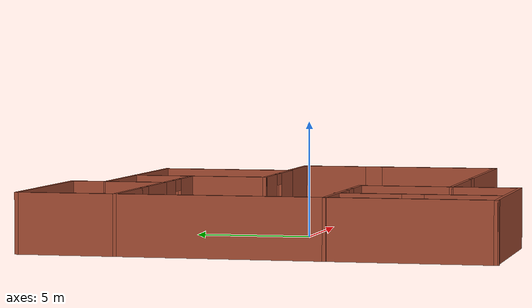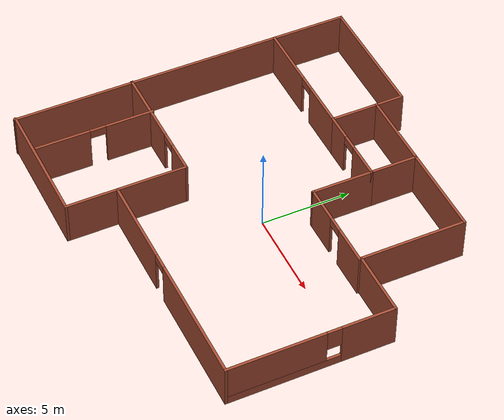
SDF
<?xml version='1.0'?>
<sdf version='1.7'>
  <model name='room'>
    <pose>-0.19163 0.060404 0 0 -0 0</pose>
    <link name='Wall_11'>
      <collision name='Wall_11_Collision'>
        <geometry>
          <box>
            <size>7.25 0.15 2.5</size>
          </box>
        </geometry>
        <pose>0 0 1.25 0 -0 0</pose>
      </collision>
      <visual name='Wall_11_Visual'>
        <pose>0 0 1.25 0 -0 0</pose>
        <geometry>
          <box>
            <size>7.25 0.15 2.5</size>
          </box>
        </geometry>
        <material>
          <script>
            <uri>file://media/materials/scripts/gazebo.material</uri>
            <name>Gazebo/Bricks</name>
          </script>
          <ambient>1 1 1 1</ambient>
        </material>
        <meta>
          <layer>0</layer>
        </meta>
      </visual>
      <pose>-6.5 9.675 0 0 -0 0</pose>
    </link>
    <link name='Wall_12'>
      <collision name='Wall_12_Collision'>
        <geometry>
          <box>
            <size>4.25 0.15 2.5</size>
          </box>
        </geometry>
        <pose>0 0 1.25 0 -0 0</pose>
      </collision>
      <visual name='Wall_12_Visual'>
        <pose>0 0 1.25 0 -0 0</pose>
        <geometry>
          <box>
            <size>4.25 0.15 2.5</size>
          </box>
        </geometry>
        <material>
          <script>
            <uri>file://media/materials/scripts/gazebo.material</uri>
            <name>Gazebo/Bricks</name>
          </script>
          <ambient>1 1 1 1</ambient>
        </material>
        <meta>
          <layer>0</layer>
        </meta>
      </visual>
      <pose>-2.95 7.625 0 0 -0 -1.5708</pose>
    </link>
    <link name='Wall_13'>
      <pose>-0.775 5.575 0 0 -0 0</pose>
      <visual name='Wall_13_Visual_0'>
        <pose>-1.47231 0 1.25 0 -0 0</pose>
        <geometry>
          <box>
            <size>1.55538 0.15 2.5</size>
          </box>
        </geometry>
        <material>
          <script>
            <uri>file://media/materials/scripts/gazebo.material</uri>
            <name>Gazebo/Bricks</name>
          </script>
          <ambient>1 1 1 1</ambient>
        </material>
        <meta>
          <layer>0</layer>
        </meta>
      </visual>
      <collision name='Wall_13_Collision_0'>
        <geometry>
          <box>
            <size>1.55538 0.15 2.5</size>
          </box>
        </geometry>
        <pose>-1.47231 0 1.25 0 -0 0</pose>
      </collision>
      <visual name='Wall_13_Visual_1'>
        <pose>1.22769 0 1.25 0 -0 0</pose>
        <geometry>
          <box>
            <size>2.04462 0.15 2.5</size>
          </box>
        </geometry>
        <material>
          <script>
            <uri>file://media/materials/scripts/gazebo.material</uri>
            <name>Gazebo/Bricks</name>
          </script>
          <ambient>1 1 1 1</ambient>
        </material>
        <meta>
          <layer>0</layer>
        </meta>
      </visual>
      <collision name='Wall_13_Collision_1'>
        <geometry>
          <box>
            <size>2.04462 0.15 2.5</size>
          </box>
        </geometry>
        <pose>1.22769 0 1.25 0 -0 0</pose>
      </collision>
      <visual name='Wall_13_Visual_2'>
        <pose>-0.244619 0 2.25 0 -0 0</pose>
        <geometry>
          <box>
            <size>0.9 0.15 0.5</size>
          </box>
        </geometry>
        <material>
          <script>
            <uri>file://media/materials/scripts/gazebo.material</uri>
            <name>Gazebo/Bricks</name>
          </script>
          <ambient>1 1 1 1</ambient>
        </material>
        <meta>
          <layer>0</layer>
        </meta>
      </visual>
      <collision name='Wall_13_Collision_2'>
        <geometry>
          <box>
            <size>0.9 0.15 0.5</size>
          </box>
        </geometry>
        <pose>-0.244619 0 2.25 0 -0 0</pose>
      </collision>
    </link>
    <link name='Wall_14'>
      <collision name='Wall_14_Collision'>
        <geometry>
          <box>
            <size>2.75 0.15 2.5</size>
          </box>
        </geometry>
        <pose>0 0 1.25 0 -0 0</pose>
      </collision>
      <visual name='Wall_14_Visual'>
        <pose>0 0 1.25 0 -0 0</pose>
        <geometry>
          <box>
            <size>2.75 0.15 2.5</size>
          </box>
        </geometry>
        <material>
          <script>
            <uri>file://media/materials/scripts/gazebo.material</uri>
            <name>Gazebo/Bricks</name>
          </script>
          <ambient>1 1 1 1</ambient>
        </material>
        <meta>
          <layer>0</layer>
        </meta>
      </visual>
      <pose>1.4 6.875 0 0 -0 1.5708</pose>
    </link>
    <link name='Wall_15'>
      <collision name='Wall_15_Collision'>
        <geometry>
          <box>
            <size>5.25 0.15 2.5</size>
          </box>
        </geometry>
        <pose>0 0 1.25 0 -0 0</pose>
      </collision>
      <visual name='Wall_15_Visual'>
        <pose>0 0 1.25 0 -0 0</pose>
        <geometry>
          <box>
            <size>5.25 0.15 2.5</size>
          </box>
        </geometry>
        <material>
          <script>
            <uri>file://media/materials/scripts/gazebo.material</uri>
            <name>Gazebo/Bricks</name>
          </script>
          <ambient>1 1 1 1</ambient>
        </material>
        <meta>
          <layer>0</layer>
        </meta>
      </visual>
      <pose>3.95 8.175 0 0 -0 0</pose>
    </link>
    <link name='Wall_16'>
      <collision name='Wall_16_Collision'>
        <geometry>
          <box>
            <size>6 0.15 2.5</size>
          </box>
        </geometry>
        <pose>0 0 1.25 0 -0 0</pose>
      </collision>
      <visual name='Wall_16_Visual'>
        <pose>0 0 1.25 0 -0 0</pose>
        <geometry>
          <box>
            <size>6 0.15 2.5</size>
          </box>
        </geometry>
        <material>
          <script>
            <uri>file://media/materials/scripts/gazebo.material</uri>
            <name>Gazebo/Bricks</name>
          </script>
          <ambient>1 1 1 1</ambient>
        </material>
        <meta>
          <layer>0</layer>
        </meta>
      </visual>
      <pose>6.5 5.25 0 0 -0 -1.5708</pose>
    </link>
    <link name='Wall_17'>
      <collision name='Wall_17_Collision'>
        <geometry>
          <box>
            <size>3.75 0.15 2.5</size>
          </box>
        </geometry>
        <pose>0 0 1.25 0 -0 0</pose>
      </collision>
      <visual name='Wall_17_Visual'>
        <pose>0 0 1.25 0 -0 0</pose>
        <geometry>
          <box>
            <size>3.75 0.15 2.5</size>
          </box>
        </geometry>
        <material>
          <script>
            <uri>file://media/materials/scripts/gazebo.material</uri>
            <name>Gazebo/Bricks</name>
          </script>
          <ambient>1 1 1 1</ambient>
        </material>
        <meta>
          <layer>0</layer>
        </meta>
      </visual>
      <pose>8.3 2.325 0 0 -0 0</pose>
    </link>
    <link name='Wall_18'>
      <pose>10.1 -2.225 0 0 -0 -1.5708</pose>
      <visual name='Wall_18_Visual_0'>
        <pose>-3.12565 0 1.25 0 -0 0</pose>
        <geometry>
          <box>
            <size>2.99871 0.15 2.5</size>
          </box>
        </geometry>
        <material>
          <script>
            <uri>file://media/materials/scripts/gazebo.material</uri>
            <name>Gazebo/Bricks</name>
          </script>
          <ambient>1 1 1 1</ambient>
        </material>
        <meta>
          <layer>0</layer>
        </meta>
      </visual>
      <collision name='Wall_18_Collision_0'>
        <geometry>
          <box>
            <size>2.99871 0.15 2.5</size>
          </box>
        </geometry>
        <pose>-3.12565 0 1.25 0 -0 0</pose>
      </collision>
      <visual name='Wall_18_Visual_1'>
        <pose>1.49935 0 0.25 0 -0 0</pose>
        <geometry>
          <box>
            <size>6.25129 0.15 0.5</size>
          </box>
        </geometry>
        <material>
          <script>
            <uri>file://media/materials/scripts/gazebo.material</uri>
            <name>Gazebo/Bricks</name>
          </script>
          <ambient>1 1 1 1</ambient>
        </material>
        <meta>
          <layer>0</layer>
        </meta>
      </visual>
      <collision name='Wall_18_Collision_1'>
        <geometry>
          <box>
            <size>6.25129 0.15 0.5</size>
          </box>
        </geometry>
        <pose>1.49935 0 0.25 0 -0 0</pose>
      </collision>
      <visual name='Wall_18_Visual_2'>
        <pose>1.89935 0 1.5 0 -0 0</pose>
        <geometry>
          <box>
            <size>5.45129 0.15 2</size>
          </box>
        </geometry>
        <material>
          <script>
            <uri>file://media/materials/scripts/gazebo.material</uri>
            <name>Gazebo/Bricks</name>
          </script>
          <ambient>1 1 1 1</ambient>
        </material>
        <meta>
          <layer>0</layer>
        </meta>
      </visual>
      <collision name='Wall_18_Collision_2'>
        <geometry>
          <box>
            <size>5.45129 0.15 2</size>
          </box>
        </geometry>
        <pose>1.89935 0 1.5 0 -0 0</pose>
      </collision>
      <visual name='Wall_18_Visual_3'>
        <pose>-1.22629 0 1.9 0 -0 0</pose>
        <geometry>
          <box>
            <size>0.8 0.15 1.2</size>
          </box>
        </geometry>
        <material>
          <script>
            <uri>file://media/materials/scripts/gazebo.material</uri>
            <name>Gazebo/Bricks</name>
          </script>
          <ambient>1 1 1 1</ambient>
        </material>
        <meta>
          <layer>0</layer>
        </meta>
      </visual>
      <collision name='Wall_18_Collision_3'>
        <geometry>
          <box>
            <size>0.8 0.15 1.2</size>
          </box>
        </geometry>
        <pose>-1.22629 0 1.9 0 -0 0</pose>
      </collision>
    </link>
    <link name='Wall_19'>
      <pose>3.55 -6.775 0 0 -0 3.14159</pose>
      <visual name='Wall_19_Visual_0'>
        <pose>-2.98156 0 1.25 0 -0 0</pose>
        <geometry>
          <box>
            <size>7.28688 0.15 2.5</size>
          </box>
        </geometry>
        <material>
          <script>
            <uri>file://media/materials/scripts/gazebo.material</uri>
            <name>Gazebo/Bricks</name>
          </script>
          <ambient>1 1 1 1</ambient>
        </material>
        <meta>
          <layer>0</layer>
        </meta>
      </visual>
      <collision name='Wall_19_Collision_0'>
        <geometry>
          <box>
            <size>7.28688 0.15 2.5</size>
          </box>
        </geometry>
        <pose>-2.98156 0 1.25 0 -0 0</pose>
      </collision>
      <visual name='Wall_19_Visual_1'>
        <pose>4.09344 0 1.25 0 -0 0</pose>
        <geometry>
          <box>
            <size>5.06311 0.15 2.5</size>
          </box>
        </geometry>
        <material>
          <script>
            <uri>file://media/materials/scripts/gazebo.material</uri>
            <name>Gazebo/Bricks</name>
          </script>
          <ambient>1 1 1 1</ambient>
        </material>
        <meta>
          <layer>0</layer>
        </meta>
      </visual>
      <collision name='Wall_19_Collision_1'>
        <geometry>
          <box>
            <size>5.06311 0.15 2.5</size>
          </box>
        </geometry>
        <pose>4.09344 0 1.25 0 -0 0</pose>
      </collision>
      <visual name='Wall_19_Visual_2'>
        <pose>1.11189 0 2.25 0 -0 0</pose>
        <geometry>
          <box>
            <size>0.9 0.15 0.5</size>
          </box>
        </geometry>
        <material>
          <script>
            <uri>file://media/materials/scripts/gazebo.material</uri>
            <name>Gazebo/Bricks</name>
          </script>
          <ambient>1 1 1 1</ambient>
        </material>
        <meta>
          <layer>0</layer>
        </meta>
      </visual>
      <collision name='Wall_19_Collision_2'>
        <geometry>
          <box>
            <size>0.9 0.15 0.5</size>
          </box>
        </geometry>
        <pose>1.11189 0 2.25 0 -0 0</pose>
      </collision>
    </link>
    <link name='Wall_20'>
      <collision name='Wall_20_Collision'>
        <geometry>
          <box>
            <size>3 0.15 2.5</size>
          </box>
        </geometry>
        <pose>0 0 1.25 0 -0 0</pose>
      </collision>
      <visual name='Wall_20_Visual'>
        <pose>0 0 1.25 0 -0 0</pose>
        <geometry>
          <box>
            <size>3 0.15 2.5</size>
          </box>
        </geometry>
        <material>
          <script>
            <uri>file://media/materials/scripts/gazebo.material</uri>
            <name>Gazebo/Bricks</name>
          </script>
          <ambient>1 1 1 1</ambient>
        </material>
        <meta>
          <layer>0</layer>
        </meta>
      </visual>
      <pose>-3 -8.2 0 0 -0 -1.5708</pose>
    </link>
    <link name='Wall_21'>
      <collision name='Wall_21_Collision'>
        <geometry>
          <box>
            <size>7.25 0.15 2.5</size>
          </box>
        </geometry>
        <pose>0 0 1.25 0 -0 0</pose>
      </collision>
      <visual name='Wall_21_Visual'>
        <pose>0 0 1.25 0 -0 0</pose>
        <geometry>
          <box>
            <size>7.25 0.15 2.5</size>
          </box>
        </geometry>
        <material>
          <script>
            <uri>file://media/materials/scripts/gazebo.material</uri>
            <name>Gazebo/Bricks</name>
          </script>
          <ambient>1 1 1 1</ambient>
        </material>
        <meta>
          <layer>0</layer>
        </meta>
      </visual>
      <pose>-6.55 -9.625 0 0 -0 3.14159</pose>
    </link>
    <link name='Wall_23'>
      <collision name='Wall_23_Collision'>
        <geometry>
          <box>
            <size>4 0.15 2.5</size>
          </box>
        </geometry>
        <pose>0 0 1.25 0 -0 0</pose>
      </collision>
      <visual name='Wall_23_Visual'>
        <pose>0 0 1.25 0 -0 0</pose>
        <geometry>
          <box>
            <size>4 0.15 2.5</size>
          </box>
        </geometry>
        <material>
          <script>
            <uri>file://media/materials/scripts/gazebo.material</uri>
            <name>Gazebo/Bricks</name>
          </script>
          <ambient>1 1 1 1</ambient>
        </material>
        <meta>
          <layer>0</layer>
        </meta>
      </visual>
      <pose>-3 -4.85 0 0 -0 1.5708</pose>
    </link>
    <link name='Wall_24'>
      <pose>-6.55 -2.925 0 0 -0 3.14159</pose>
      <visual name='Wall_24_Visual_0'>
        <pose>-2.7204 0 1.25 0 -0 0</pose>
        <geometry>
          <box>
            <size>1.80919 0.15 2.5</size>
          </box>
        </geometry>
        <material>
          <script>
            <uri>file://media/materials/scripts/gazebo.material</uri>
            <name>Gazebo/Bricks</name>
          </script>
          <ambient>1 1 1 1</ambient>
        </material>
        <meta>
          <layer>0</layer>
        </meta>
      </visual>
      <collision name='Wall_24_Collision_0'>
        <geometry>
          <box>
            <size>1.80919 0.15 2.5</size>
          </box>
        </geometry>
        <pose>-2.7204 0 1.25 0 -0 0</pose>
      </collision>
      <visual name='Wall_24_Visual_1'>
        <pose>1.3546 0 1.25 0 -0 0</pose>
        <geometry>
          <box>
            <size>4.54081 0.15 2.5</size>
          </box>
        </geometry>
        <material>
          <script>
            <uri>file://media/materials/scripts/gazebo.material</uri>
            <name>Gazebo/Bricks</name>
          </script>
          <ambient>1 1 1 1</ambient>
        </material>
        <meta>
          <layer>0</layer>
        </meta>
      </visual>
      <collision name='Wall_24_Collision_1'>
        <geometry>
          <box>
            <size>4.54081 0.15 2.5</size>
          </box>
        </geometry>
        <pose>1.3546 0 1.25 0 -0 0</pose>
      </collision>
      <visual name='Wall_24_Visual_2'>
        <pose>-1.36581 0 2.25 0 -0 0</pose>
        <geometry>
          <box>
            <size>0.9 0.15 0.5</size>
          </box>
        </geometry>
        <material>
          <script>
            <uri>file://media/materials/scripts/gazebo.material</uri>
            <name>Gazebo/Bricks</name>
          </script>
          <ambient>1 1 1 1</ambient>
        </material>
        <meta>
          <layer>0</layer>
        </meta>
      </visual>
      <collision name='Wall_24_Collision_2'>
        <geometry>
          <box>
            <size>0.9 0.15 0.5</size>
          </box>
        </geometry>
        <pose>-1.36581 0 2.25 0 -0 0</pose>
      </collision>
    </link>
    <link name='Wall_26'>
      <pose>-7.56304 -6.14872 0 0 -0 -1.5708</pose>
      <visual name='Wall_26_Visual_0'>
        <pose>-2.00175 0 1.25 0 -0 0</pose>
        <geometry>
          <box>
            <size>2.7465 0.15 2.5</size>
          </box>
        </geometry>
        <material>
          <script>
            <uri>file://media/materials/scripts/gazebo.material</uri>
            <name>Gazebo/Bricks</name>
          </script>
          <ambient>1 1 1 1</ambient>
        </material>
        <meta>
          <layer>0</layer>
        </meta>
      </visual>
      <collision name='Wall_26_Collision_0'>
        <geometry>
          <box>
            <size>2.7465 0.15 2.5</size>
          </box>
        </geometry>
        <pose>-2.00175 0 1.25 0 -0 0</pose>
      </collision>
      <visual name='Wall_26_Visual_1'>
        <pose>1.82325 0 1.25 0 -0 0</pose>
        <geometry>
          <box>
            <size>3.1035 0.15 2.5</size>
          </box>
        </geometry>
        <material>
          <script>
            <uri>file://media/materials/scripts/gazebo.material</uri>
            <name>Gazebo/Bricks</name>
          </script>
          <ambient>1 1 1 1</ambient>
        </material>
        <meta>
          <layer>0</layer>
        </meta>
      </visual>
      <collision name='Wall_26_Collision_1'>
        <geometry>
          <box>
            <size>3.1035 0.15 2.5</size>
          </box>
        </geometry>
        <pose>1.82325 0 1.25 0 -0 0</pose>
      </collision>
      <visual name='Wall_26_Visual_2'>
        <pose>-0.178497 0 2.25 0 -0 0</pose>
        <geometry>
          <box>
            <size>0.9 0.15 0.5</size>
          </box>
        </geometry>
        <material>
          <script>
            <uri>file://media/materials/scripts/gazebo.material</uri>
            <name>Gazebo/Bricks</name>
          </script>
          <ambient>1 1 1 1</ambient>
        </material>
        <meta>
          <layer>0</layer>
        </meta>
      </visual>
      <collision name='Wall_26_Collision_2'>
        <geometry>
          <box>
            <size>0.9 0.15 0.5</size>
          </box>
        </geometry>
        <pose>-0.178497 0 2.25 0 -0 0</pose>
      </collision>
    </link>
    <link name='Wall_28'>
      <collision name='Wall_28_Collision'>
        <geometry>
          <box>
            <size>4.5 0.15 2.5</size>
          </box>
        </geometry>
        <pose>0 0 1.25 0 -0 0</pose>
      </collision>
      <visual name='Wall_28_Visual'>
        <pose>0 0 1.25 0 -0 0</pose>
        <geometry>
          <box>
            <size>4.5 0.15 2.5</size>
          </box>
        </geometry>
        <material>
          <script>
            <uri>file://media/materials/scripts/gazebo.material</uri>
            <name>Gazebo/Bricks</name>
          </script>
          <ambient>1 1 1 1</ambient>
        </material>
        <meta>
          <layer>0</layer>
        </meta>
      </visual>
      <pose>-0.775 8.175 0 0 -0 3.14159</pose>
    </link>
    <link name='Wall_30'>
      <collision name='Wall_30_Collision'>
        <geometry>
          <box>
            <size>3.5 0.15 2.5</size>
          </box>
        </geometry>
        <pose>0 0 1.25 0 -0 0</pose>
      </collision>
      <visual name='Wall_30_Visual'>
        <pose>0 0 1.25 0 -0 0</pose>
        <geometry>
          <box>
            <size>3.5 0.15 2.5</size>
          </box>
        </geometry>
        <material>
          <script>
            <uri>file://media/materials/scripts/gazebo.material</uri>
            <name>Gazebo/Bricks</name>
          </script>
          <ambient>1 1 1 1</ambient>
        </material>
        <meta>
          <layer>0</layer>
        </meta>
      </visual>
      <pose>1.4 3.9 0 0 -0 -1.5708</pose>
    </link>
    <link name='Wall_31'>
      <pose>3.95 2.225 0 0 -0 0</pose>
      <visual name='Wall_31_Visual_0'>
        <pose>-1.56004 0 1.25 0 -0 0</pose>
        <geometry>
          <box>
            <size>2.1309 0.15 2.5</size>
          </box>
        </geometry>
        <material>
          <script>
            <uri>file://media/materials/scripts/gazebo.material</uri>
            <name>Gazebo/Bricks</name>
          </script>
          <ambient>1 1 1 1</ambient>
        </material>
        <meta>
          <layer>0</layer>
        </meta>
      </visual>
      <collision name='Wall_31_Collision_0'>
        <geometry>
          <box>
            <size>2.1309 0.15 2.5</size>
          </box>
        </geometry>
        <pose>-1.56004 0 1.25 0 -0 0</pose>
      </collision>
      <visual name='Wall_31_Visual_1'>
        <pose>1.51545 0 1.25 0 -0 0</pose>
        <geometry>
          <box>
            <size>2.22008 0.15 2.5</size>
          </box>
        </geometry>
        <material>
          <script>
            <uri>file://media/materials/scripts/gazebo.material</uri>
            <name>Gazebo/Bricks</name>
          </script>
          <ambient>1 1 1 1</ambient>
        </material>
        <meta>
          <layer>0</layer>
        </meta>
      </visual>
      <collision name='Wall_31_Collision_1'>
        <geometry>
          <box>
            <size>2.22008 0.15 2.5</size>
          </box>
        </geometry>
        <pose>1.51545 0 1.25 0 -0 0</pose>
      </collision>
      <visual name='Wall_31_Visual_2'>
        <pose>-0.044593 0 2.25 0 -0 0</pose>
        <geometry>
          <box>
            <size>0.9 0.15 0.5</size>
          </box>
        </geometry>
        <material>
          <script>
            <uri>file://media/materials/scripts/gazebo.material</uri>
            <name>Gazebo/Bricks</name>
          </script>
          <ambient>1 1 1 1</ambient>
        </material>
        <meta>
          <layer>0</layer>
        </meta>
      </visual>
      <collision name='Wall_31_Collision_2'>
        <geometry>
          <box>
            <size>0.9 0.15 0.5</size>
          </box>
        </geometry>
        <pose>-0.044593 0 2.25 0 -0 0</pose>
      </collision>
    </link>
    <link name='Wall_33'>
      <pose>-6.5 5.575 0 0 -0 3.14159</pose>
      <visual name='Wall_33_Visual_0'>
        <pose>-2.27298 0 1.25 0 -0 0</pose>
        <geometry>
          <box>
            <size>2.70403 0.15 2.5</size>
          </box>
        </geometry>
        <material>
          <script>
            <uri>file://media/materials/scripts/gazebo.material</uri>
            <name>Gazebo/Bricks</name>
          </script>
          <ambient>1 1 1 1</ambient>
        </material>
        <meta>
          <layer>0</layer>
        </meta>
      </visual>
      <collision name='Wall_33_Collision_0'>
        <geometry>
          <box>
            <size>2.70403 0.15 2.5</size>
          </box>
        </geometry>
        <pose>-2.27298 0 1.25 0 -0 0</pose>
      </collision>
      <visual name='Wall_33_Visual_1'>
        <pose>1.80202 0 1.25 0 -0 0</pose>
        <geometry>
          <box>
            <size>3.64597 0.15 2.5</size>
          </box>
        </geometry>
        <material>
          <script>
            <uri>file://media/materials/scripts/gazebo.material</uri>
            <name>Gazebo/Bricks</name>
          </script>
          <ambient>1 1 1 1</ambient>
        </material>
        <meta>
          <layer>0</layer>
        </meta>
      </visual>
      <collision name='Wall_33_Collision_1'>
        <geometry>
          <box>
            <size>3.64597 0.15 2.5</size>
          </box>
        </geometry>
        <pose>1.80202 0 1.25 0 -0 0</pose>
      </collision>
      <visual name='Wall_33_Visual_2'>
        <pose>-0.470967 0 2.25 0 -0 0</pose>
        <geometry>
          <box>
            <size>0.9 0.15 0.5</size>
          </box>
        </geometry>
        <material>
          <script>
            <uri>file://media/materials/scripts/gazebo.material</uri>
            <name>Gazebo/Bricks</name>
          </script>
          <ambient>1 1 1 1</ambient>
        </material>
        <meta>
          <layer>0</layer>
        </meta>
      </visual>
      <collision name='Wall_33_Collision_2'>
        <geometry>
          <box>
            <size>0.9 0.15 0.5</size>
          </box>
        </geometry>
        <pose>-0.470967 0 2.25 0 -0 0</pose>
      </collision>
    </link>
    <link name='Wall_9'>
      <collision name='Wall_9_Collision'>
        <geometry>
          <box>
            <size>19.5 0.15 2.5</size>
          </box>
        </geometry>
        <pose>0 0 1.25 0 -0 0</pose>
      </collision>
      <visual name='Wall_9_Visual'>
        <pose>0 0 1.25 0 -0 0</pose>
        <geometry>
          <box>
            <size>19.5 0.15 2.5</size>
          </box>
        </geometry>
        <material>
          <script>
            <uri>file://media/materials/scripts/gazebo.material</uri>
            <name>Gazebo/Bricks</name>
          </script>
          <ambient>1 1 1 1</ambient>
        </material>
        <meta>
          <layer>0</layer>
        </meta>
      </visual>
      <pose>-10.05 -0 0 0 -0 -1.5708</pose>
    </link>
    <static>1</static>
  </model>
</sdf>
